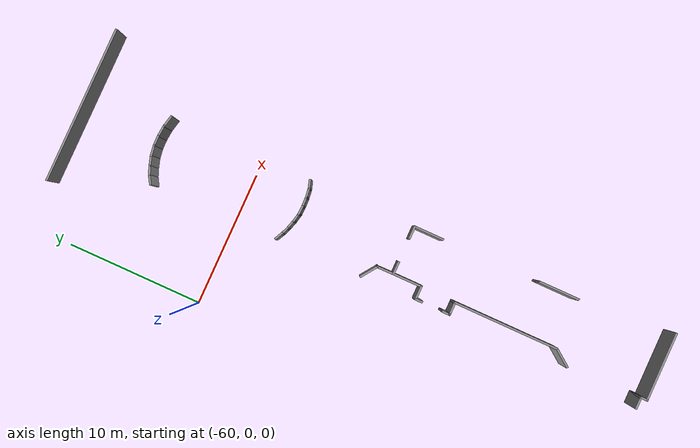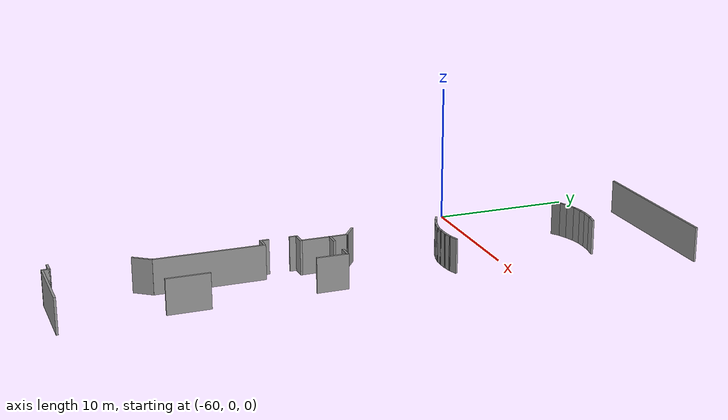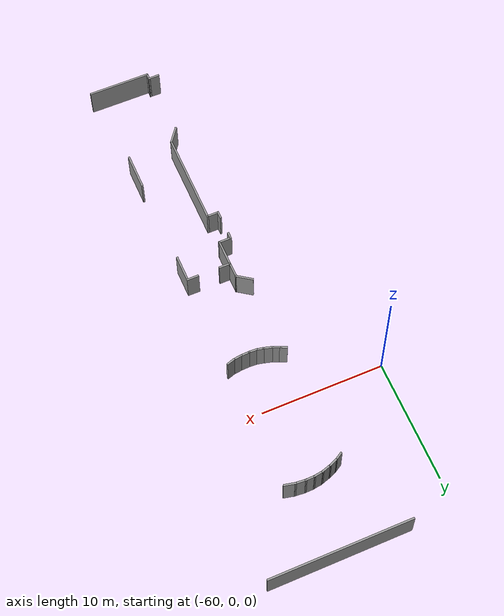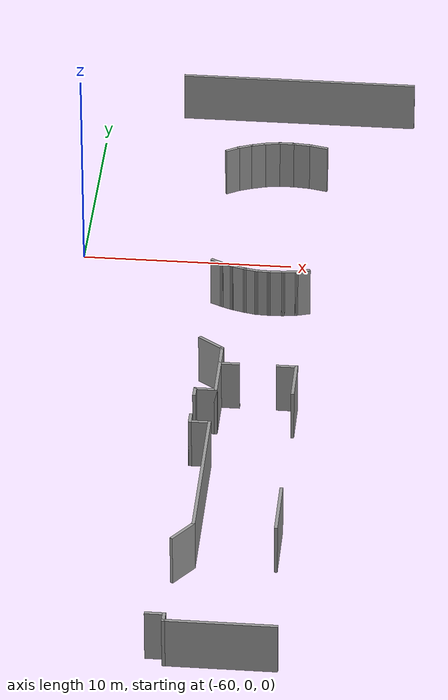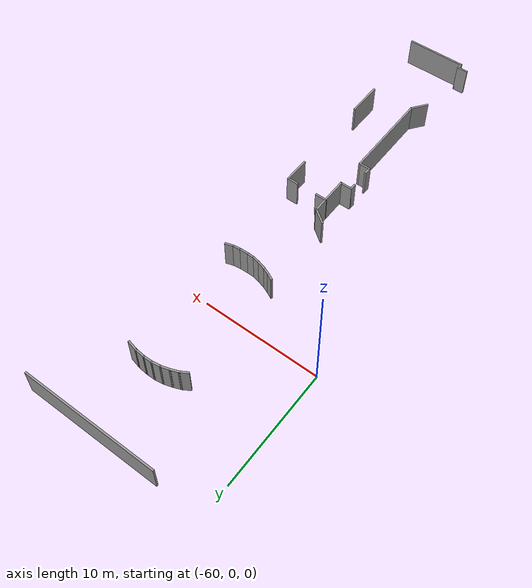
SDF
<sdf version="1.7">
 <model name="TD1_large">
  <pose>-31.5443 -9.14138 0 0 -0 0</pose>
  <link name="Wall_109">
   <collision name="Wall_109_Collision">
    <geometry><box><size>3 0.15 2.5</size></box></geometry>
    <pose>0 0 1.25 0 -0 0</pose>
   </collision>
   <visual name="Wall_109_Visual">
    <pose>0 0 1.25 0 -0 0</pose>
    <geometry><box><size>3 0.15 2.5</size></box></geometry>
    <material>
     <script><uri>file://media/materials/scripts/gazebo.material</uri><name>Gazebo/Grey</name></script>
     <ambient>1 1 1 1</ambient>
    </material>
    <meta><layer>0</layer></meta>
   </visual>
   <pose>-17.17 -13.344 0 0 -0 -1.5708</pose>
  </link>
  <link name="Wall_119">
   <collision name="Wall_119_Collision">
    <geometry><box><size>7.75 0.15 2.5</size></box></geometry>
    <pose>0 0 1.25 0 -0 0</pose>
   </collision>
   <visual name="Wall_119_Visual">
    <pose>0 0 1.25 0 -0 0</pose>
    <geometry><box><size>7.75 0.15 2.5</size></box></geometry>
    <material>
     <script><uri>file://media/materials/scripts/gazebo.material</uri><name>Gazebo/Grey</name></script>
     <ambient>1 1 1 1</ambient>
    </material>
    <meta><layer>0</layer></meta>
   </visual>
   <pose>-20.8577 -10.9663 0 0 -0 -1.5708</pose>
  </link>
  <link name="Wall_124">
   <collision name="Wall_124_Collision">
    <geometry><box><size>1.50767 0.15 2.5</size></box></geometry>
    <pose>0 0 1.25 0 -0 0</pose>
   </collision>
   <visual name="Wall_124_Visual">
    <pose>0 0 1.25 0 -0 0</pose>
    <geometry><box><size>1.50767 0.15 2.5</size></box></geometry>
    <material>
     <script><uri>file://media/materials/scripts/gazebo.material</uri><name>Gazebo/Grey</name></script>
     <ambient>1 1 1 1</ambient>
    </material>
    <meta><layer>0</layer></meta>
   </visual>
   <pose>-21.2899 -15.3964 0 0 -0 0.927295</pose>
  </link>
  <link name="Wall_141">
   <collision name="Wall_141_Collision">
    <geometry><box><size>0.95 0.15 2.5</size></box></geometry>
    <pose>0 0 1.25 0 -0 0</pose>
   </collision>
   <visual name="Wall_141_Visual">
    <pose>0 0 1.25 0 -0 0</pose>
    <geometry><box><size>0.95 0.15 2.5</size></box></geometry>
    <material>
     <script><uri>file://media/materials/scripts/gazebo.material</uri><name>Gazebo/Grey</name></script>
     <ambient>1 1 1 1</ambient>
    </material>
    <meta><layer>0</layer></meta>
   </visual>
   <pose>-21.9097 -21.395 0 0 -0 0</pose>
  </link>
  <link name="Wall_143">
   <collision name="Wall_143_Collision">
    <geometry><box><size>0.6 0.15 2.5</size></box></geometry>
    <pose>0 0 1.25 0 -0 0</pose>
   </collision>
   <visual name="Wall_143_Visual">
    <pose>0 0 1.25 0 -0 0</pose>
    <geometry><box><size>0.6 0.15 2.5</size></box></geometry>
    <material>
     <script><uri>file://media/materials/scripts/gazebo.material</uri><name>Gazebo/Grey</name></script>
     <ambient>1 1 1 1</ambient>
    </material>
    <meta><layer>0</layer></meta>
   </visual>
   <pose>-21.5097 -21.62 0 0 -0 -1.5708</pose>
  </link>
  <link name="Wall_145">
   <collision name="Wall_145_Collision">
    <geometry><box><size>5.1 0.15 2.5</size></box></geometry>
    <pose>0 0 1.25 0 -0 0</pose>
   </collision>
   <visual name="Wall_145_Visual">
    <pose>0 0 1.25 0 -0 0</pose>
    <geometry><box><size>5.1 0.15 2.5</size></box></geometry>
    <material>
     <script><uri>file://media/materials/scripts/gazebo.material</uri><name>Gazebo/Grey</name></script>
     <ambient>1 1 1 1</ambient>
    </material>
    <meta><layer>0</layer></meta>
   </visual>
   <pose>-19.0347 -21.8448 0 0 -0 7.1e-05</pose>
  </link>
  <link name="Wall_201">
   <collision name="Wall_201_Collision">
    <geometry><box><size>11.5 0.15 2.5</size></box></geometry>
    <pose>0 0 1.25 0 -0 0</pose>
   </collision>
   <visual name="Wall_201_Visual">
    <pose>0 0 1.25 0 -0 0</pose>
    <geometry><box><size>11.5 0.15 2.5</size></box></geometry>
    <material>
     <script><uri>file://media/materials/scripts/gazebo.material</uri><name>Gazebo/Grey</name></script>
     <ambient>1 1 1 1</ambient>
    </material>
    <meta><layer>0</layer></meta>
   </visual>
   <pose>-19.0623 21.845 0 0 -0 3.14159</pose>
  </link>
  <link name="Wall_210">
   <collision name="Wall_210_Collision">
    <geometry><box><size>1.46084 0.15 2.5</size></box></geometry>
    <pose>0 0 1.25 0 -0 0</pose>
   </collision>
   <visual name="Wall_210_Visual">
    <pose>0 0 1.25 0 -0 0</pose>
    <geometry><box><size>1.46084 0.15 2.5</size></box></geometry>
    <material>
     <script><uri>file://media/materials/scripts/gazebo.material</uri><name>Gazebo/Grey</name></script>
     <ambient>1 1 1 1</ambient>
    </material>
    <meta><layer>0</layer></meta>
   </visual>
   <pose>-21.353 -0.934546 0 0 -0 -0.617563</pose>
  </link>
  <link name="Wall_211">
   <collision name="Wall_211_Collision">
    <geometry><box><size>1.35232 0.15 2.5</size></box></geometry>
    <pose>0 0 1.25 0 -0 0</pose>
   </collision>
   <visual name="Wall_211_Visual">
    <pose>0 0 1.25 0 -0 0</pose>
    <geometry><box><size>1.35232 0.15 2.5</size></box></geometry>
    <material>
     <script><uri>file://media/materials/scripts/gazebo.material</uri><name>Gazebo/Grey</name></script>
     <ambient>1 1 1 1</ambient>
    </material>
    <meta><layer>0</layer></meta>
   </visual>
   <pose>-20.8132 -1.91521 0 0 -0 -1.56174</pose>
  </link>
  <link name="Wall_219">
   <collision name="Wall_219_Collision">
    <geometry><box><size>0.782718 0.15 2.5</size></box></geometry>
    <pose>0 0 1.25 0 -0 0</pose>
   </collision>
   <visual name="Wall_219_Visual">
    <pose>0 0 1.25 0 -0 0</pose>
    <geometry><box><size>0.782718 0.15 2.5</size></box></geometry>
    <material>
     <script><uri>file://media/materials/scripts/gazebo.material</uri><name>Gazebo/Grey</name></script>
     <ambient>1 1 1 1</ambient>
    </material>
    <meta><layer>0</layer></meta>
   </visual>
   <pose>-21.8013 15.4103 0 0 -0 0.537285</pose>
  </link>
  <link name="Wall_220">
   <collision name="Wall_220_Collision">
    <geometry><box><size>0.783563 0.15 2.5</size></box></geometry>
    <pose>0 0 1.25 0 -0 0</pose>
   </collision>
   <visual name="Wall_220_Visual">
    <pose>0 0 1.25 0 -0 0</pose>
    <geometry><box><size>0.783563 0.15 2.5</size></box></geometry>
    <material>
     <script><uri>file://media/materials/scripts/gazebo.material</uri><name>Gazebo/Grey</name></script>
     <ambient>1 1 1 1</ambient>
    </material>
    <meta><layer>0</layer></meta>
   </visual>
   <pose>-21.2346 15.6878 0 0 -0 0.373727</pose>
  </link>
  <link name="Wall_221">
   <collision name="Wall_221_Collision">
    <geometry><box><size>0.863402 0.15 2.5</size></box></geometry>
    <pose>0 0 1.25 0 -0 0</pose>
   </collision>
   <visual name="Wall_221_Visual">
    <pose>0 0 1.25 0 -0 0</pose>
    <geometry><box><size>0.863402 0.15 2.5</size></box></geometry>
    <material>
     <script><uri>file://media/materials/scripts/gazebo.material</uri><name>Gazebo/Grey</name></script>
     <ambient>1 1 1 1</ambient>
    </material>
    <meta><layer>0</layer></meta>
   </visual>
   <pose>-20.5985 15.9076 0 0 -0 0.296115</pose>
  </link>
  <link name="Wall_222">
   <collision name="Wall_222_Collision">
    <geometry><box><size>0.851681 0.15 2.5</size></box></geometry>
    <pose>0 0 1.25 0 -0 0</pose>
   </collision>
   <visual name="Wall_222_Visual">
    <pose>0 0 1.25 0 -0 0</pose>
    <geometry><box><size>0.851681 0.15 2.5</size></box></geometry>
    <material>
     <script><uri>file://media/materials/scripts/gazebo.material</uri><name>Gazebo/Grey</name></script>
     <ambient>1 1 1 1</ambient>
    </material>
    <meta><layer>0</layer></meta>
   </visual>
   <pose>-19.9104 16.0637 0 0 -0 0.14889</pose>
  </link>
  <link name="Wall_223">
   <collision name="Wall_223_Collision">
    <geometry><box><size>0.844304 0.15 2.5</size></box></geometry>
    <pose>0 0 1.25 0 -0 0</pose>
   </collision>
   <visual name="Wall_223_Visual">
    <pose>0 0 1.25 0 -0 0</pose>
    <geometry><box><size>0.844304 0.15 2.5</size></box></geometry>
    <material>
     <script><uri>file://media/materials/scripts/gazebo.material</uri><name>Gazebo/Grey</name></script>
     <ambient>1 1 1 1</ambient>
    </material>
    <meta><layer>0</layer></meta>
   </visual>
   <pose>-19.2165 16.1215 0 0 -0 0.016665</pose>
  </link>
  <link name="Wall_224">
   <collision name="Wall_224_Collision">
    <geometry><box><size>0.939496 0.15 2.5</size></box></geometry>
    <pose>0 0 1.25 0 -0 0</pose>
   </collision>
   <visual name="Wall_224_Visual">
    <pose>0 0 1.25 0 -0 0</pose>
    <geometry><box><size>0.939496 0.15 2.5</size></box></geometry>
    <material>
     <script><uri>file://media/materials/scripts/gazebo.material</uri><name>Gazebo/Grey</name></script>
     <ambient>1 1 1 1</ambient>
    </material>
    <meta><layer>0</layer></meta>
   </visual>
   <pose>-18.4763 16.0926 0 0 -0 -0.088007</pose>
  </link>
  <link name="Wall_225">
   <collision name="Wall_225_Collision">
    <geometry><box><size>0.98045 0.15 2.5</size></box></geometry>
    <pose>0 0 1.25 0 -0 0</pose>
   </collision>
   <visual name="Wall_225_Visual">
    <pose>0 0 1.25 0 -0 0</pose>
    <geometry><box><size>0.98045 0.15 2.5</size></box></geometry>
    <material>
     <script><uri>file://media/materials/scripts/gazebo.material</uri><name>Gazebo/Grey</name></script>
     <ambient>1 1 1 1</ambient>
    </material>
    <meta><layer>0</layer></meta>
   </visual>
   <pose>-17.6783 15.9654 0 0 -0 -0.224711</pose>
  </link>
  <link name="Wall_251">
   <collision name="Wall_251_Collision">
    <geometry><box><size>0.742658 0.15 2.5</size></box></geometry>
    <pose>0 0 1.25 0 -0 0</pose>
   </collision>
   <visual name="Wall_251_Visual">
    <pose>0 0 1.25 0 -0 0</pose>
    <geometry><box><size>0.742658 0.15 2.5</size></box></geometry>
    <material>
     <script><uri>file://media/materials/scripts/gazebo.material</uri><name>Gazebo/Grey</name></script>
     <ambient>1 1 1 1</ambient>
    </material>
    <meta><layer>0</layer></meta>
   </visual>
   <pose>-17.5915 5.27328 0 0 -0 -2.84453</pose>
  </link>
  <link name="Wall_252">
   <collision name="Wall_252_Collision">
    <geometry><box><size>0.779752 0.15 2.5</size></box></geometry>
    <pose>0 0 1.25 0 -0 0</pose>
   </collision>
   <visual name="Wall_252_Visual">
    <pose>0 0 1.25 0 -0 0</pose>
    <geometry><box><size>0.779752 0.15 2.5</size></box></geometry>
    <material>
     <script><uri>file://media/materials/scripts/gazebo.material</uri><name>Gazebo/Grey</name></script>
     <ambient>1 1 1 1</ambient>
    </material>
    <meta><layer>0</layer></meta>
   </visual>
   <pose>-18.1872 5.14606 0 0 -0 -3.01268</pose>
  </link>
  <link name="Wall_253">
   <collision name="Wall_253_Collision">
    <geometry><box><size>0.821186 0.15 2.5</size></box></geometry>
    <pose>0 0 1.25 0 -0 0</pose>
   </collision>
   <visual name="Wall_253_Visual">
    <pose>0 0 1.25 0 -0 0</pose>
    <geometry><box><size>0.821186 0.15 2.5</size></box></geometry>
    <material>
     <script><uri>file://media/materials/scripts/gazebo.material</uri><name>Gazebo/Grey</name></script>
     <ambient>1 1 1 1</ambient>
    </material>
    <meta><layer>0</layer></meta>
   </visual>
   <pose>-18.8348 5.09401 0 0 -0 -3.10712</pose>
  </link>
  <link name="Wall_254">
   <collision name="Wall_254_Collision">
    <geometry><box><size>0.740284 0.15 2.5</size></box></geometry>
    <pose>0 0 1.25 0 -0 0</pose>
   </collision>
   <visual name="Wall_254_Visual">
    <pose>0 0 1.25 0 -0 0</pose>
    <geometry><box><size>0.740284 0.15 2.5</size></box></geometry>
    <material>
     <script><uri>file://media/materials/scripts/gazebo.material</uri><name>Gazebo/Grey</name></script>
     <ambient>1 1 1 1</ambient>
    </material>
    <meta><layer>0</layer></meta>
   </visual>
   <pose>-19.4651 5.09401 0 0 -0 3.1024</pose>
  </link>
  <link name="Wall_255">
   <collision name="Wall_255_Collision">
    <geometry><box><size>0.717054 0.15 2.5</size></box></geometry>
    <pose>0 0 1.25 0 -0 0</pose>
   </collision>
   <visual name="Wall_255_Visual">
    <pose>0 0 1.25 0 -0 0</pose>
    <geometry><box><size>0.717054 0.15 2.5</size></box></geometry>
    <material>
     <script><uri>file://media/materials/scripts/gazebo.material</uri><name>Gazebo/Grey</name></script>
     <ambient>1 1 1 1</ambient>
    </material>
    <meta><layer>0</layer></meta>
   </visual>
   <pose>-20.0376 5.16341 0 0 -0 2.9362</pose>
  </link>
  <link name="Wall_256">
   <collision name="Wall_256_Collision">
    <geometry><box><size>0.812461 0.15 2.5</size></box></geometry>
    <pose>0 0 1.25 0 -0 0</pose>
   </collision>
   <visual name="Wall_256_Visual">
    <pose>0 0 1.25 0 -0 0</pose>
    <geometry><box><size>0.812461 0.15 2.5</size></box></geometry>
    <material>
     <script><uri>file://media/materials/scripts/gazebo.material</uri><name>Gazebo/Grey</name></script>
     <ambient>1 1 1 1</ambient>
    </material>
    <meta><layer>0</layer></meta>
   </visual>
   <pose>-20.6332 5.31375 0 0 -0 2.8585</pose>
  </link>
  <link name="Wall_257">
   <collision name="Wall_257_Collision">
    <geometry><box><size>0.674024 0.15 2.5</size></box></geometry>
    <pose>0 0 1.25 0 -0 0</pose>
   </collision>
   <visual name="Wall_257_Visual">
    <pose>0 0 1.25 0 -0 0</pose>
    <geometry><box><size>0.674024 0.15 2.5</size></box></geometry>
    <material>
     <script><uri>file://media/materials/scripts/gazebo.material</uri><name>Gazebo/Grey</name></script>
     <ambient>1 1 1 1</ambient>
    </material>
    <meta><layer>0</layer></meta>
   </visual>
   <pose>-21.1941 5.50458 0 0 -0 2.75699</pose>
  </link>
  <link name="Wall_258">
   <collision name="Wall_258_Collision">
    <geometry><box><size>0.693077 0.15 2.5</size></box></geometry>
    <pose>0 0 1.25 0 -0 0</pose>
   </collision>
   <visual name="Wall_258_Visual">
    <pose>0 0 1.25 0 -0 0</pose>
    <geometry><box><size>0.693077 0.15 2.5</size></box></geometry>
    <material>
     <script><uri>file://media/materials/scripts/gazebo.material</uri><name>Gazebo/Grey</name></script>
     <ambient>1 1 1 1</ambient>
    </material>
    <meta><layer>0</layer></meta>
   </visual>
   <pose>-21.6799 5.72432 0 0 -0 2.67794</pose>
  </link>
  <link name="Wall_76">
   <collision name="Wall_76_Collision">
    <geometry><box><size>1 0.15 2.5</size></box></geometry>
    <pose>0 0 1.25 0 -0 0</pose>
   </collision>
   <visual name="Wall_76_Visual">
    <pose>0 0 1.25 0 -0 0</pose>
    <geometry><box><size>1 0.15 2.5</size></box></geometry>
    <material>
     <script><uri>file://media/materials/scripts/gazebo.material</uri><name>Gazebo/Grey</name></script>
     <ambient>1 1 1 1</ambient>
    </material>
    <meta><layer>0</layer></meta>
   </visual>
   <pose>-17.6827 -2.51634 0 0 -0 0</pose>
  </link>
  <link name="Wall_77">
   <collision name="Wall_77_Collision">
    <geometry><box><size>2.25 0.15 2.5</size></box></geometry>
    <pose>0 0 1.25 0 -0 0</pose>
   </collision>
   <visual name="Wall_77_Visual">
    <pose>0 0 1.25 0 -0 0</pose>
    <geometry><box><size>2.25 0.15 2.5</size></box></geometry>
    <material>
     <script><uri>file://media/materials/scripts/gazebo.material</uri><name>Gazebo/Grey</name></script>
     <ambient>1 1 1 1</ambient>
    </material>
    <meta><layer>0</layer></meta>
   </visual>
   <pose>-17.2577 -3.56648 0 0 -0 -1.57081</pose>
  </link>
  <link name="Wall_81">
   <collision name="Wall_81_Collision">
    <geometry><box><size>1 0.15 2.5</size></box></geometry>
    <pose>0 0 1.25 0 -0 0</pose>
   </collision>
   <visual name="Wall_81_Visual">
    <pose>0 0 1.25 0 -0 0</pose>
    <geometry><box><size>1 0.15 2.5</size></box></geometry>
    <material>
     <script><uri>file://media/materials/scripts/gazebo.material</uri><name>Gazebo/Grey</name></script>
     <ambient>1 1 1 1</ambient>
    </material>
    <meta><layer>0</layer></meta>
   </visual>
   <pose>-20.3827 -2.51634 0 0 -0 3.14159</pose>
  </link>
  <link name="Wall_82">
   <collision name="Wall_82_Collision">
    <geometry><box><size>2.25 0.15 2.5</size></box></geometry>
    <pose>0 0 1.25 0 -0 0</pose>
   </collision>
   <visual name="Wall_82_Visual">
    <pose>0 0 1.25 0 -0 0</pose>
    <geometry><box><size>2.25 0.15 2.5</size></box></geometry>
    <material>
     <script><uri>file://media/materials/scripts/gazebo.material</uri><name>Gazebo/Grey</name></script>
     <ambient>1 1 1 1</ambient>
    </material>
    <meta><layer>0</layer></meta>
   </visual>
   <pose>-20.8077 -3.56634 0 0 -0 -1.5708</pose>
  </link>
  <link name="Wall_83">
   <collision name="Wall_83_Collision">
    <geometry><box><size>1.1 0.15 2.5</size></box></geometry>
    <pose>0 0 1.25 0 -0 0</pose>
   </collision>
   <visual name="Wall_83_Visual">
    <pose>0 0 1.25 0 -0 0</pose>
    <geometry><box><size>1.1 0.15 2.5</size></box></geometry>
    <material>
     <script><uri>file://media/materials/scripts/gazebo.material</uri><name>Gazebo/Grey</name></script>
     <ambient>1 1 1 1</ambient>
    </material>
    <meta><layer>0</layer></meta>
   </visual>
   <pose>-21.2827 -4.61634 0 0 -0 3.14159</pose>
  </link>
  <link name="Wall_85">
   <collision name="Wall_85_Collision">
    <geometry><box><size>0.6 0.15 2.5</size></box></geometry>
    <pose>0 0 1.25 0 -0 0</pose>
   </collision>
   <visual name="Wall_85_Visual">
    <pose>0 0 1.25 0 -0 0</pose>
    <geometry><box><size>0.6 0.15 2.5</size></box></geometry>
    <material>
     <script><uri>file://media/materials/scripts/gazebo.material</uri><name>Gazebo/Grey</name></script>
     <ambient>1 1 1 1</ambient>
    </material>
    <meta><layer>0</layer></meta>
   </visual>
   <pose>-21.7577 -4.84134 0 0 -0 -1.5708</pose>
  </link>
  <link name="Wall_94">
   <collision name="Wall_94_Collision">
    <geometry><box><size>0.65 0.15 2.5</size></box></geometry>
    <pose>0 0 1.25 0 -0 0</pose>
   </collision>
   <visual name="Wall_94_Visual">
    <pose>0 0 1.25 0 -0 0</pose>
    <geometry><box><size>0.65 0.15 2.5</size></box></geometry>
    <material>
     <script><uri>file://media/materials/scripts/gazebo.material</uri><name>Gazebo/Grey</name></script>
     <ambient>1 1 1 1</ambient>
    </material>
    <meta><layer>0</layer></meta>
   </visual>
   <pose>-21.7577 -6.91634 0 0 -0 -1.5708</pose>
  </link>
  <link name="Wall_96">
   <collision name="Wall_96_Collision">
    <geometry><box><size>1.05 0.15 2.5</size></box></geometry>
    <pose>0 0 1.25 0 -0 0</pose>
   </collision>
   <visual name="Wall_96_Visual">
    <pose>0 0 1.25 0 -0 0</pose>
    <geometry><box><size>1.05 0.15 2.5</size></box></geometry>
    <material>
     <script><uri>file://media/materials/scripts/gazebo.material</uri><name>Gazebo/Grey</name></script>
     <ambient>1 1 1 1</ambient>
    </material>
    <meta><layer>0</layer></meta>
   </visual>
   <pose>-21.3077 -7.16634 0 0 -0 0</pose>
  </link>
  <static>1</static>
 </model>
</sdf>
